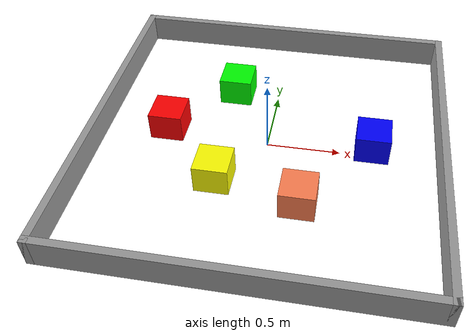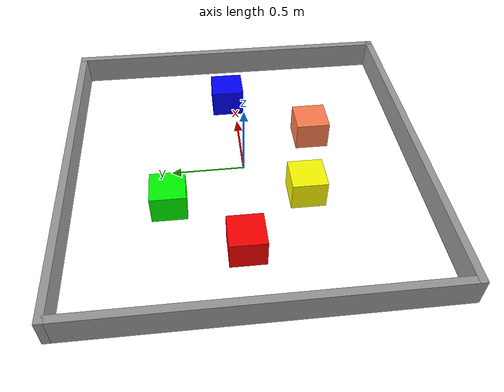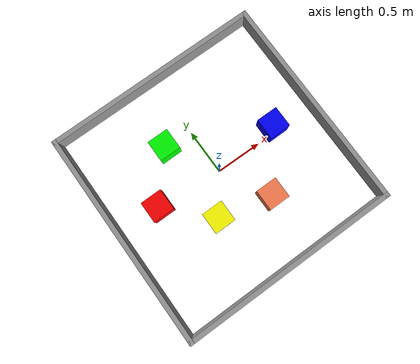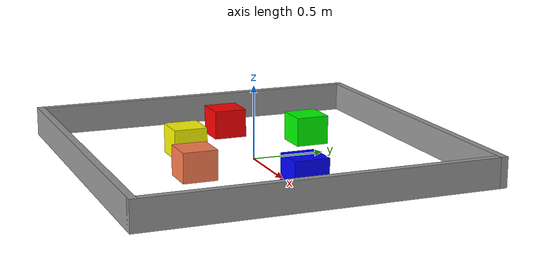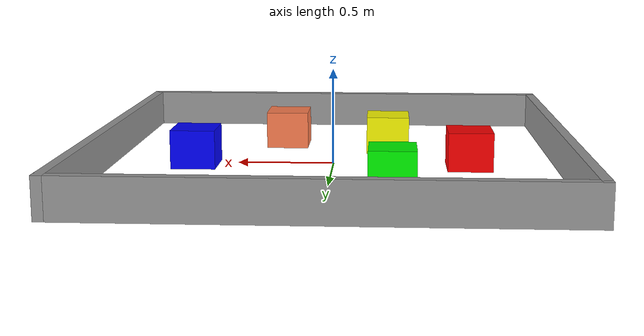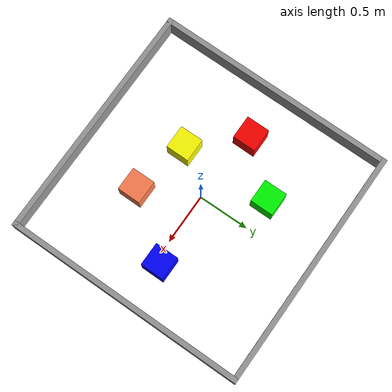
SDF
<?xml version='1.0'?>
<sdf version='1.6'>
  <model name='wro-arc_arena_true'>
    <link name='Wall_13'>
      <pose frame=''>0 -1.175 0 0 -0 0</pose>
      <self_collide>0</self_collide>
      <kinematic>0</kinematic>
      <visual name='Wall_13_Visual'>
        <pose frame=''>0 0 0.1 0 -0 0</pose>
        <geometry>
          <box>
            <size>2.4 0.05 0.2</size>
          </box>
        </geometry>
        <material>
          <script>
            <uri>file://media/materials/scripts/gazebo.material</uri>
            <name>Gazebo/Grey</name>
          </script>
          <ambient>0 0 0 1</ambient>
          <diffuse>0.7 0.7 0.7 1</diffuse>
          <specular>0.01 0.01 0.01 1</specular>
          <emissive>0 0 0 1</emissive>
        </material>
        <cast_shadows>1</cast_shadows>
        <transparency>0</transparency>
      </visual>
      <collision name='Wall_13_Collision'>
        <laser_retro>0</laser_retro>
        <max_contacts>10</max_contacts>
        <pose frame=''>0 0 0.1 0 -0 0</pose>
        <geometry>
          <box>
            <size>2.4 0.05 0.2</size>
          </box>
        </geometry>
        <surface>
          <friction>
            <ode>
              <mu>1</mu>
              <mu2>1</mu2>
              <fdir1>0 0 0</fdir1>
              <slip1>0</slip1>
              <slip2>0</slip2>
            </ode>
            <torsional>
              <coefficient>1</coefficient>
              <patch_radius>0</patch_radius>
              <surface_radius>0</surface_radius>
              <use_patch_radius>1</use_patch_radius>
              <ode>
                <slip>0</slip>
              </ode>
            </torsional>
          </friction>
          <bounce>
            <restitution_coefficient>0</restitution_coefficient>
            <threshold>1e+06</threshold>
          </bounce>
          <contact>
            <collide_without_contact>0</collide_without_contact>
            <collide_without_contact_bitmask>1</collide_without_contact_bitmask>
            <collide_bitmask>1</collide_bitmask>
            <ode>
              <soft_cfm>0</soft_cfm>
              <soft_erp>0.2</soft_erp>
              <kp>1e+13</kp>
              <kd>1</kd>
              <max_vel>0.01</max_vel>
              <min_depth>0</min_depth>
            </ode>
            <bullet>
              <split_impulse>1</split_impulse>
              <split_impulse_penetration_threshold>-0.01</split_impulse_penetration_threshold>
              <soft_cfm>0</soft_cfm>
              <soft_erp>0.2</soft_erp>
              <kp>1e+13</kp>
              <kd>1</kd>
            </bullet>
          </contact>
        </surface>
      </collision>
    </link>
    <link name='Wall_15'>
      <pose frame=''>1.175 0 0 0 -0 1.5708</pose>
      <self_collide>0</self_collide>
      <kinematic>0</kinematic>
      <gravity>1</gravity>
      <inertial>
        <mass>1</mass>
        <pose frame=''>0 0 0 0 -0 0</pose>
        <inertia>
          <ixx>1</ixx>
          <ixy>0</ixy>
          <ixz>0</ixz>
          <iyy>1</iyy>
          <iyz>0</iyz>
          <izz>1</izz>
        </inertia>
      </inertial>
      <visual name='Wall_15_Visual'>
        <pose frame=''>0 0 0.1 0 -0 0</pose>
        <geometry>
          <box>
            <size>2.4 0.05 0.2</size>
          </box>
        </geometry>
        <material>
          <script>
            <uri>file://media/materials/scripts/gazebo.material</uri>
            <name>Gazebo/Grey</name>
          </script>
          <ambient>0 0 0 1</ambient>
          <diffuse>0.7 0.7 0.7 1</diffuse>
          <specular>0.01 0.01 0.01 1</specular>
          <emissive>0 0 0 1</emissive>
          <shader type='vertex'>
            <normal_map>__default__</normal_map>
          </shader>
        </material>
        <cast_shadows>1</cast_shadows>
        <transparency>0</transparency>
      </visual>
      <collision name='Wall_15_Collision'>
        <laser_retro>0</laser_retro>
        <max_contacts>10</max_contacts>
        <pose frame=''>0 0 0.1 0 -0 0</pose>
        <geometry>
          <box>
            <size>2.4 0.05 0.2</size>
          </box>
        </geometry>
        <surface>
          <friction>
            <ode>
              <mu>1</mu>
              <mu2>1</mu2>
              <fdir1>0 0 0</fdir1>
              <slip1>0</slip1>
              <slip2>0</slip2>
            </ode>
            <torsional>
              <coefficient>1</coefficient>
              <patch_radius>0</patch_radius>
              <surface_radius>0</surface_radius>
              <use_patch_radius>1</use_patch_radius>
              <ode>
                <slip>0</slip>
              </ode>
            </torsional>
          </friction>
          <bounce>
            <restitution_coefficient>0</restitution_coefficient>
            <threshold>1e+06</threshold>
          </bounce>
          <contact>
            <collide_without_contact>0</collide_without_contact>
            <collide_without_contact_bitmask>1</collide_without_contact_bitmask>
            <collide_bitmask>1</collide_bitmask>
            <ode>
              <soft_cfm>0</soft_cfm>
              <soft_erp>0.2</soft_erp>
              <kp>1e+13</kp>
              <kd>1</kd>
              <max_vel>0.01</max_vel>
              <min_depth>0</min_depth>
            </ode>
            <bullet>
              <split_impulse>1</split_impulse>
              <split_impulse_penetration_threshold>-0.01</split_impulse_penetration_threshold>
              <soft_cfm>0</soft_cfm>
              <soft_erp>0.2</soft_erp>
              <kp>1e+13</kp>
              <kd>1</kd>
            </bullet>
          </contact>
        </surface>
      </collision>
    </link>
    <link name='Wall_17'>
      <pose frame=''>0 1.175 0 0 -0 3.14159</pose>
      <self_collide>0</self_collide>
      <kinematic>0</kinematic>
      <visual name='Wall_17_Visual'>
        <pose frame=''>0 0 0.1 0 -0 0</pose>
        <geometry>
          <box>
            <size>2.4 0.05 0.2</size>
          </box>
        </geometry>
        <material>
          <script>
            <uri>file://media/materials/scripts/gazebo.material</uri>
            <name>Gazebo/Grey</name>
          </script>
          <ambient>0 0 0 1</ambient>
          <diffuse>0.7 0.7 0.7 1</diffuse>
          <specular>0.01 0.01 0.01 1</specular>
          <emissive>0 0 0 1</emissive>
        </material>
        <cast_shadows>1</cast_shadows>
        <transparency>0</transparency>
      </visual>
      <collision name='Wall_17_Collision'>
        <laser_retro>0</laser_retro>
        <max_contacts>10</max_contacts>
        <pose frame=''>0 0 0.1 0 -0 0</pose>
        <geometry>
          <box>
            <size>2.4 0.05 0.2</size>
          </box>
        </geometry>
        <surface>
          <friction>
            <ode>
              <mu>1</mu>
              <mu2>1</mu2>
              <fdir1>0 0 0</fdir1>
              <slip1>0</slip1>
              <slip2>0</slip2>
            </ode>
            <torsional>
              <coefficient>1</coefficient>
              <patch_radius>0</patch_radius>
              <surface_radius>0</surface_radius>
              <use_patch_radius>1</use_patch_radius>
              <ode>
                <slip>0</slip>
              </ode>
            </torsional>
          </friction>
          <bounce>
            <restitution_coefficient>0</restitution_coefficient>
            <threshold>1e+06</threshold>
          </bounce>
          <contact>
            <collide_without_contact>0</collide_without_contact>
            <collide_without_contact_bitmask>1</collide_without_contact_bitmask>
            <collide_bitmask>1</collide_bitmask>
            <ode>
              <soft_cfm>0</soft_cfm>
              <soft_erp>0.2</soft_erp>
              <kp>1e+13</kp>
              <kd>1</kd>
              <max_vel>0.01</max_vel>
              <min_depth>0</min_depth>
            </ode>
            <bullet>
              <split_impulse>1</split_impulse>
              <split_impulse_penetration_threshold>-0.01</split_impulse_penetration_threshold>
              <soft_cfm>0</soft_cfm>
              <soft_erp>0.2</soft_erp>
              <kp>1e+13</kp>
              <kd>1</kd>
            </bullet>
          </contact>
        </surface>
      </collision>
    </link>
    <link name='Wall_19'>
      <pose frame=''>-1.175 0 0 0 0 -1.5708</pose>
      <self_collide>0</self_collide>
      <kinematic>0</kinematic>
      <visual name='Wall_19_Visual'>
        <pose frame=''>0 0 0.1 0 -0 0</pose>
        <geometry>
          <box>
            <size>2.4 0.05 0.2</size>
          </box>
        </geometry>
        <material>
          <script>
            <uri>file://media/materials/scripts/gazebo.material</uri>
            <name>Gazebo/Grey</name>
          </script>
          <ambient>0 0 0 1</ambient>
          <diffuse>0.7 0.7 0.7 1</diffuse>
          <specular>0.01 0.01 0.01 1</specular>
          <emissive>0 0 0 1</emissive>
        </material>
        <cast_shadows>1</cast_shadows>
        <transparency>0</transparency>
      </visual>
      <collision name='Wall_19_Collision'>
        <laser_retro>0</laser_retro>
        <max_contacts>10</max_contacts>
        <pose frame=''>0 0 0.1 0 -0 0</pose>
        <geometry>
          <box>
            <size>2.4 0.05 0.2</size>
          </box>
        </geometry>
        <surface>
          <friction>
            <ode>
              <mu>1</mu>
              <mu2>1</mu2>
              <fdir1>0 0 0</fdir1>
              <slip1>0</slip1>
              <slip2>0</slip2>
            </ode>
            <torsional>
              <coefficient>1</coefficient>
              <patch_radius>0</patch_radius>
              <surface_radius>0</surface_radius>
              <use_patch_radius>1</use_patch_radius>
              <ode>
                <slip>0</slip>
              </ode>
            </torsional>
          </friction>
          <bounce>
            <restitution_coefficient>0</restitution_coefficient>
            <threshold>1e+06</threshold>
          </bounce>
          <contact>
            <collide_without_contact>0</collide_without_contact>
            <collide_without_contact_bitmask>1</collide_without_contact_bitmask>
            <collide_bitmask>1</collide_bitmask>
            <ode>
              <soft_cfm>0</soft_cfm>
              <soft_erp>0.2</soft_erp>
              <kp>1e+13</kp>
              <kd>1</kd>
              <max_vel>0.01</max_vel>
              <min_depth>0</min_depth>
            </ode>
            <bullet>
              <split_impulse>1</split_impulse>
              <split_impulse_penetration_threshold>-0.01</split_impulse_penetration_threshold>
              <soft_cfm>0</soft_cfm>
              <soft_erp>0.2</soft_erp>
              <kp>1e+13</kp>
              <kd>1</kd>
            </bullet>
          </contact>
        </surface>
      </collision>
    </link>
    <link name='link_0_clone'>
      <pose frame=''>-0.28523 -0.382238 0.1 0 -0 0</pose>
      <inertial>
        <mass>1</mass>
        <inertia>
          <ixx>0.166667</ixx>
          <ixy>0</ixy>
          <ixz>0</ixz>
          <iyy>0.166667</iyy>
          <iyz>0</iyz>
          <izz>0.166667</izz>
        </inertia>
        <pose frame=''>0 0 0 0 -0 0</pose>
      </inertial>
      <self_collide>0</self_collide>
      <kinematic>0</kinematic>
      <gravity>1</gravity>
      <visual name='visual'>
        <pose frame=''>0 0 0 0 -0 0</pose>
        <geometry>
          <box>
            <size>0.23 0.23 0.2</size>
          </box>
        </geometry>
        <material>
          <lighting>1</lighting>
          <script>
            <uri>file://media/materials/scripts/gazebo.material</uri>
            <name>Gazebo/Grey</name>
          </script>
          <ambient>1 1 0 1</ambient>
          <diffuse>1 1 0 1</diffuse>
          <specular>1 1 0 1</specular>
          <emissive>0 0 0 1</emissive>
          <shader type='vertex'>
            <normal_map>__default__</normal_map>
          </shader>
        </material>
        <cast_shadows>1</cast_shadows>
        <transparency>0</transparency>
      </visual>
      <collision name='collision'>
        <laser_retro>0</laser_retro>
        <max_contacts>10</max_contacts>
        <pose frame=''>0 0 0 0 -0 0</pose>
        <geometry>
          <box>
            <size>0.23 0.23 0.2</size>
          </box>
        </geometry>
        <surface>
          <friction>
            <ode>
              <mu>1</mu>
              <mu2>1</mu2>
              <fdir1>0 0 0</fdir1>
              <slip1>0</slip1>
              <slip2>0</slip2>
            </ode>
            <torsional>
              <coefficient>1</coefficient>
              <patch_radius>0</patch_radius>
              <surface_radius>0</surface_radius>
              <use_patch_radius>1</use_patch_radius>
              <ode>
                <slip>0</slip>
              </ode>
            </torsional>
          </friction>
          <bounce>
            <restitution_coefficient>0</restitution_coefficient>
            <threshold>1e+06</threshold>
          </bounce>
          <contact>
            <collide_without_contact>0</collide_without_contact>
            <collide_without_contact_bitmask>1</collide_without_contact_bitmask>
            <collide_bitmask>1</collide_bitmask>
            <ode>
              <soft_cfm>0</soft_cfm>
              <soft_erp>0.2</soft_erp>
              <kp>1e+13</kp>
              <kd>1</kd>
              <max_vel>0.01</max_vel>
              <min_depth>0</min_depth>
            </ode>
            <bullet>
              <split_impulse>1</split_impulse>
              <split_impulse_penetration_threshold>-0.01</split_impulse_penetration_threshold>
              <soft_cfm>0</soft_cfm>
              <soft_erp>0.2</soft_erp>
              <kp>1e+13</kp>
              <kd>1</kd>
            </bullet>
          </contact>
        </surface>
      </collision>
    </link>
    <link name='link_0_clone_0'>
      <pose frame=''>0.71477 0.05693 0.1 0 -0 0</pose>
      <inertial>
        <mass>1</mass>
        <inertia>
          <ixx>0.166667</ixx>
          <ixy>0</ixy>
          <ixz>0</ixz>
          <iyy>0.166667</iyy>
          <iyz>0</iyz>
          <izz>0.166667</izz>
        </inertia>
        <pose frame=''>0 0 0 0 -0 0</pose>
      </inertial>
      <self_collide>0</self_collide>
      <kinematic>0</kinematic>
      <gravity>1</gravity>
      <visual name='visual'>
        <pose frame=''>0 0 0 0 -0 0</pose>
        <geometry>
          <box>
            <size>0.23 0.23 0.2</size>
          </box>
        </geometry>
        <material>
          <lighting>1</lighting>
          <script>
            <uri>file://media/materials/scripts/gazebo.material</uri>
            <name>Gazebo/Grey</name>
          </script>
          <ambient>0 0 1 1</ambient>
          <diffuse>0 0 1 1</diffuse>
          <specular>0 0 1 1</specular>
          <emissive>0 0 0 1</emissive>
          <shader type='vertex'>
            <normal_map>__default__</normal_map>
          </shader>
        </material>
        <cast_shadows>1</cast_shadows>
        <transparency>0</transparency>
      </visual>
      <collision name='collision'>
        <laser_retro>0</laser_retro>
        <max_contacts>10</max_contacts>
        <pose frame=''>0 0 0 0 -0 0</pose>
        <geometry>
          <box>
            <size>0.23 0.23 0.2</size>
          </box>
        </geometry>
        <surface>
          <friction>
            <ode>
              <mu>1</mu>
              <mu2>1</mu2>
              <fdir1>0 0 0</fdir1>
              <slip1>0</slip1>
              <slip2>0</slip2>
            </ode>
            <torsional>
              <coefficient>1</coefficient>
              <patch_radius>0</patch_radius>
              <surface_radius>0</surface_radius>
              <use_patch_radius>1</use_patch_radius>
              <ode>
                <slip>0</slip>
              </ode>
            </torsional>
          </friction>
          <bounce>
            <restitution_coefficient>0</restitution_coefficient>
            <threshold>1e+06</threshold>
          </bounce>
          <contact>
            <collide_without_contact>0</collide_without_contact>
            <collide_without_contact_bitmask>1</collide_without_contact_bitmask>
            <collide_bitmask>1</collide_bitmask>
            <ode>
              <soft_cfm>0</soft_cfm>
              <soft_erp>0.2</soft_erp>
              <kp>1e+13</kp>
              <kd>1</kd>
              <max_vel>0.01</max_vel>
              <min_depth>0</min_depth>
            </ode>
            <bullet>
              <split_impulse>1</split_impulse>
              <split_impulse_penetration_threshold>-0.01</split_impulse_penetration_threshold>
              <soft_cfm>0</soft_cfm>
              <soft_erp>0.2</soft_erp>
              <kp>1e+13</kp>
              <kd>1</kd>
            </bullet>
          </contact>
        </surface>
      </collision>
    </link>
    <link name='link_0_clone_1'>
      <pose frame=''>-0.705189 0.05693 0.1 0 -0 0</pose>
      <inertial>
        <mass>1</mass>
        <inertia>
          <ixx>0.166667</ixx>
          <ixy>0</ixy>
          <ixz>0</ixz>
          <iyy>0.166667</iyy>
          <iyz>0</iyz>
          <izz>0.166667</izz>
        </inertia>
        <pose frame=''>0 0 0 0 -0 0</pose>
      </inertial>
      <self_collide>0</self_collide>
      <kinematic>0</kinematic>
      <gravity>1</gravity>
      <visual name='visual'>
        <pose frame=''>0 0 0 0 -0 0</pose>
        <geometry>
          <box>
            <size>0.23 0.23 0.2</size>
          </box>
        </geometry>
        <material>
          <lighting>1</lighting>
          <script>
            <uri>file://media/materials/scripts/gazebo.material</uri>
            <name>Gazebo/Grey</name>
          </script>
          <ambient>1 0 0 1</ambient>
          <diffuse>1 0 0 1</diffuse>
          <specular>1 0 0 1</specular>
          <emissive>0 0 0 1</emissive>
          <shader type='vertex'>
            <normal_map>__default__</normal_map>
          </shader>
        </material>
        <cast_shadows>1</cast_shadows>
        <transparency>0</transparency>
      </visual>
      <collision name='collision'>
        <laser_retro>0</laser_retro>
        <max_contacts>10</max_contacts>
        <pose frame=''>0 0 0 0 -0 0</pose>
        <geometry>
          <box>
            <size>0.23 0.23 0.2</size>
          </box>
        </geometry>
        <surface>
          <friction>
            <ode>
              <mu>1</mu>
              <mu2>1</mu2>
              <fdir1>0 0 0</fdir1>
              <slip1>0</slip1>
              <slip2>0</slip2>
            </ode>
            <torsional>
              <coefficient>1</coefficient>
              <patch_radius>0</patch_radius>
              <surface_radius>0</surface_radius>
              <use_patch_radius>1</use_patch_radius>
              <ode>
                <slip>0</slip>
              </ode>
            </torsional>
          </friction>
          <bounce>
            <restitution_coefficient>0</restitution_coefficient>
            <threshold>1e+06</threshold>
          </bounce>
          <contact>
            <collide_without_contact>0</collide_without_contact>
            <collide_without_contact_bitmask>1</collide_without_contact_bitmask>
            <collide_bitmask>1</collide_bitmask>
            <ode>
              <soft_cfm>0</soft_cfm>
              <soft_erp>0.2</soft_erp>
              <kp>1e+13</kp>
              <kd>1</kd>
              <max_vel>0.01</max_vel>
              <min_depth>0</min_depth>
            </ode>
            <bullet>
              <split_impulse>1</split_impulse>
              <split_impulse_penetration_threshold>-0.01</split_impulse_penetration_threshold>
              <soft_cfm>0</soft_cfm>
              <soft_erp>0.2</soft_erp>
              <kp>1e+13</kp>
              <kd>1</kd>
            </bullet>
          </contact>
        </surface>
      </collision>
    </link>
    <link name='link_0_clone_2'>
      <pose frame=''>-0.306983 0.51741 0.1 0 -0 0</pose>
      <inertial>
        <mass>1</mass>
        <inertia>
          <ixx>0.166667</ixx>
          <ixy>0</ixy>
          <ixz>0</ixz>
          <iyy>0.166667</iyy>
          <iyz>0</iyz>
          <izz>0.166667</izz>
        </inertia>
        <pose frame=''>0 0 0 0 -0 0</pose>
      </inertial>
      <self_collide>0</self_collide>
      <kinematic>0</kinematic>
      <gravity>1</gravity>
      <visual name='visual'>
        <pose frame=''>0 0 0 0 -0 0</pose>
        <geometry>
          <box>
            <size>0.23 0.23 0.2</size>
          </box>
        </geometry>
        <material>
          <lighting>1</lighting>
          <script>
            <uri>file://media/materials/scripts/gazebo.material</uri>
            <name>Gazebo/Grey</name>
          </script>
          <ambient>0 1 0 1</ambient>
          <diffuse>0 1 0 1</diffuse>
          <specular>0 1 0 1</specular>
          <emissive>0 0 0 1</emissive>
          <shader type='vertex'>
            <normal_map>__default__</normal_map>
          </shader>
        </material>
        <cast_shadows>1</cast_shadows>
        <transparency>0</transparency>
      </visual>
      <collision name='collision'>
        <laser_retro>0</laser_retro>
        <max_contacts>10</max_contacts>
        <pose frame=''>0 0 0 0 -0 0</pose>
        <geometry>
          <box>
            <size>0.23 0.23 0.2</size>
          </box>
        </geometry>
        <surface>
          <friction>
            <ode>
              <mu>1</mu>
              <mu2>1</mu2>
              <fdir1>0 0 0</fdir1>
              <slip1>0</slip1>
              <slip2>0</slip2>
            </ode>
            <torsional>
              <coefficient>1</coefficient>
              <patch_radius>0</patch_radius>
              <surface_radius>0</surface_radius>
              <use_patch_radius>1</use_patch_radius>
              <ode>
                <slip>0</slip>
              </ode>
            </torsional>
          </friction>
          <bounce>
            <restitution_coefficient>0</restitution_coefficient>
            <threshold>1e+06</threshold>
          </bounce>
          <contact>
            <collide_without_contact>0</collide_without_contact>
            <collide_without_contact_bitmask>1</collide_without_contact_bitmask>
            <collide_bitmask>1</collide_bitmask>
            <ode>
              <soft_cfm>0</soft_cfm>
              <soft_erp>0.2</soft_erp>
              <kp>1e+13</kp>
              <kd>1</kd>
              <max_vel>0.01</max_vel>
              <min_depth>0</min_depth>
            </ode>
            <bullet>
              <split_impulse>1</split_impulse>
              <split_impulse_penetration_threshold>-0.01</split_impulse_penetration_threshold>
              <soft_cfm>0</soft_cfm>
              <soft_erp>0.2</soft_erp>
              <kp>1e+13</kp>
              <kd>1</kd>
            </bullet>
          </contact>
        </surface>
      </collision>
    </link>
    <link name='link_0_clone_3'>
      <pose frame=''>0.27936 -0.510375 0.1 0 -0 0</pose>
      <inertial>
        <mass>1</mass>
        <inertia>
          <ixx>0.166667</ixx>
          <ixy>0</ixy>
          <ixz>0</ixz>
          <iyy>0.166667</iyy>
          <iyz>0</iyz>
          <izz>0.166667</izz>
        </inertia>
        <pose frame=''>0 0 0 0 -0 0</pose>
      </inertial>
      <self_collide>0</self_collide>
      <kinematic>0</kinematic>
      <gravity>1</gravity>
      <visual name='visual'>
        <pose frame=''>0 0 0 0 -0 0</pose>
        <geometry>
          <box>
            <size>0.23 0.23 0.2</size>
          </box>
        </geometry>
        <material>
          <lighting>1</lighting>
          <script>
            <uri>file://media/materials/scripts/gazebo.material</uri>
            <name>Gazebo/Grey</name>
          </script>
          <ambient>1 0.498 0.314 1</ambient>
          <diffuse>1 0.498 0.314 1</diffuse>
          <specular>1 0.498 0.314 1</specular>
          <emissive>0 0 0 1</emissive>
          <shader type='vertex'>
            <normal_map>__default__</normal_map>
          </shader>
        </material>
        <cast_shadows>1</cast_shadows>
        <transparency>0</transparency>
      </visual>
      <collision name='collision'>
        <laser_retro>0</laser_retro>
        <max_contacts>10</max_contacts>
        <pose frame=''>0 0 0 0 -0 0</pose>
        <geometry>
          <box>
            <size>0.23 0.23 0.2</size>
          </box>
        </geometry>
        <surface>
          <friction>
            <ode>
              <mu>1</mu>
              <mu2>1</mu2>
              <fdir1>0 0 0</fdir1>
              <slip1>0</slip1>
              <slip2>0</slip2>
            </ode>
            <torsional>
              <coefficient>1</coefficient>
              <patch_radius>0</patch_radius>
              <surface_radius>0</surface_radius>
              <use_patch_radius>1</use_patch_radius>
              <ode>
                <slip>0</slip>
              </ode>
            </torsional>
          </friction>
          <bounce>
            <restitution_coefficient>0</restitution_coefficient>
            <threshold>1e+06</threshold>
          </bounce>
          <contact>
            <collide_without_contact>0</collide_without_contact>
            <collide_without_contact_bitmask>1</collide_without_contact_bitmask>
            <collide_bitmask>1</collide_bitmask>
            <ode>
              <soft_cfm>0</soft_cfm>
              <soft_erp>0.2</soft_erp>
              <kp>1e+13</kp>
              <kd>1</kd>
              <max_vel>0.01</max_vel>
              <min_depth>0</min_depth>
            </ode>
            <bullet>
              <split_impulse>1</split_impulse>
              <split_impulse_penetration_threshold>-0.01</split_impulse_penetration_threshold>
              <soft_cfm>0</soft_cfm>
              <soft_erp>0.2</soft_erp>
              <kp>1e+13</kp>
              <kd>1</kd>
            </bullet>
          </contact>
        </surface>
      </collision>
    </link>
    <static>1</static>
    <allow_auto_disable>1</allow_auto_disable>
  </model>
</sdf>
